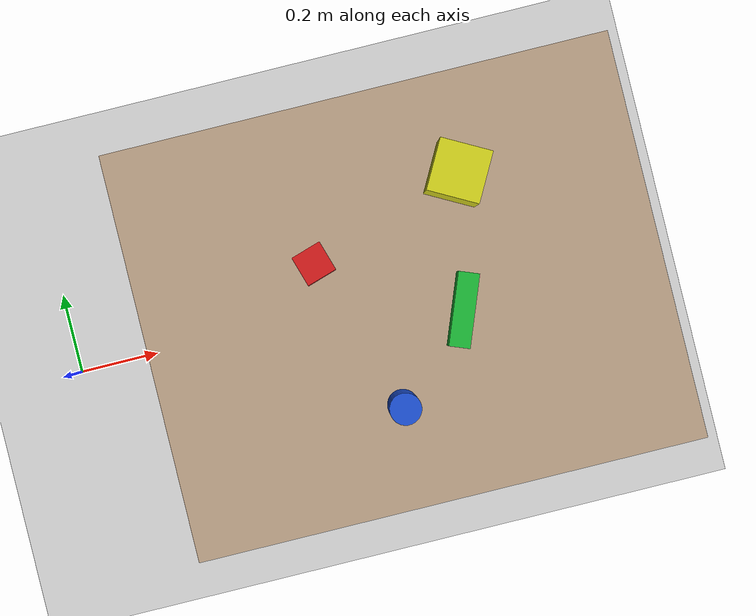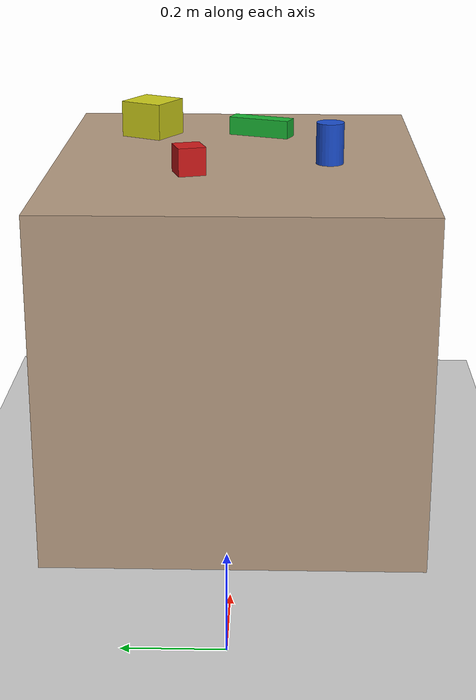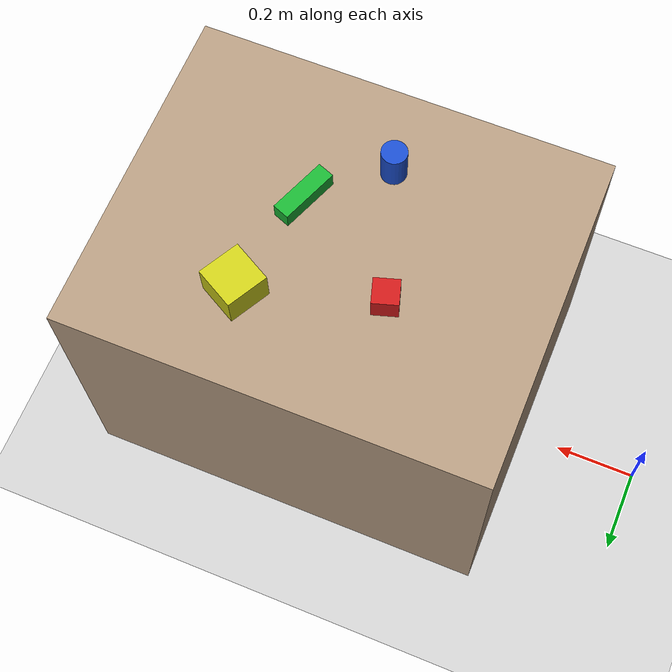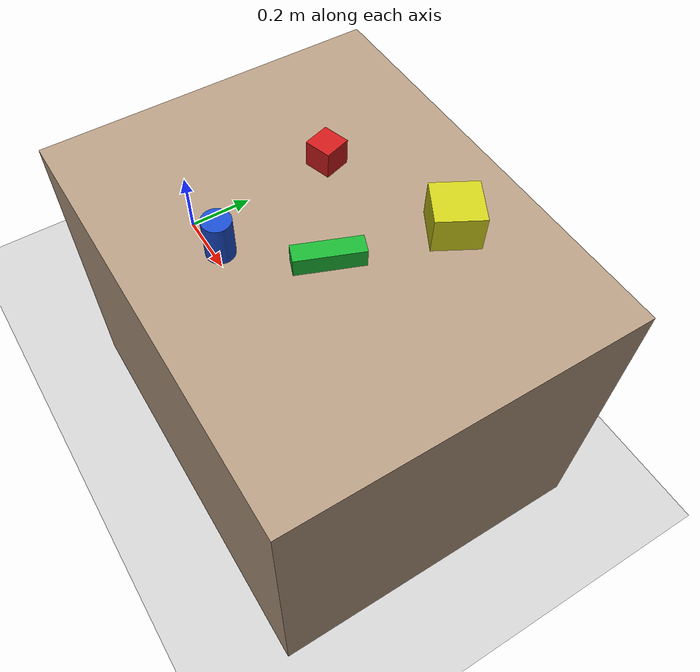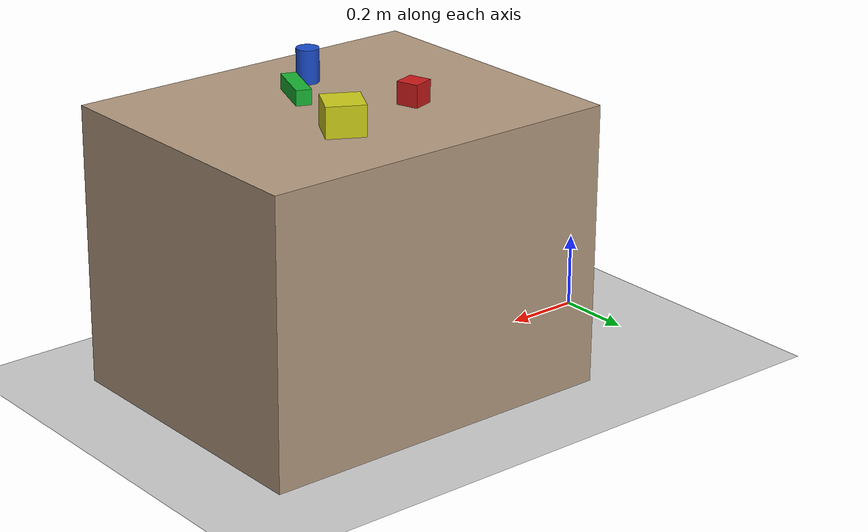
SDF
<?xml version="1.0" ?>
<sdf version="1.7">
  <world name="ur5_mesa_objetos">
    <!-- Gravedad y mundo base -->
    <gravity>0 0 -9.81</gravity>

    <!-- Suelo y luz -->
    <include>
      <uri>model://ground_plane</uri>
    </include>

    <include>
      <uri>model://sun</uri>
    </include>

    <!-- Mesa de trabajo delante del robot -->
    <!-- Tamaño: 1.0 x 0.8 x 0.75 m, apoyada en el suelo -->
    <model name="mesa_trabajo">
      <static>true</static>
      <!-- x y z roll pitch yaw -->
      <pose>0.8 0.0 0.375 0 0 0</pose>
      <link name="link">
        <collision name="collision">
          <geometry>
            <box>
              <size>1.0 0.8 0.75</size>
            </box>
          </geometry>
        </collision>
        <visual name="visual">
          <geometry>
            <box>
              <size>1.0 0.8 0.75</size>
            </box>
          </geometry>
          <material>
            <ambient>0.7 0.6 0.5 1</ambient>
            <diffuse>0.7 0.6 0.5 1</diffuse>
          </material>
        </visual>
      </link>
    </model>

    <!-- OBJETO 1: caja pequeña -->
    <model name="obj_caja_1">
      <!-- Encima de la mesa, posición aleatoria -->
      <pose>0.65 0.10 0.78 0 0 0.3</pose>
      <static>false</static>
      <link name="link">
        <collision name="collision">
          <geometry>
            <box>
              <size>0.06 0.06 0.06</size>
            </box>
          </geometry>
        </collision>
        <visual name="visual">
          <geometry>
            <box>
              <size>0.06 0.06 0.06</size>
            </box>
          </geometry>
          <material>
            <ambient>0.8 0.1 0.1 1</ambient>
            <diffuse>0.8 0.1 0.1 1</diffuse>
          </material>
        </visual>
      </link>
    </model>

    <!-- OBJETO 2: caja alargada -->
    <model name="obj_caja_2">
      <!-- Otra pose distinta, medio “tirada” -->
      <pose>0.90 -0.05 0.80 0 0 1.2</pose>
      <static>false</static>
      <link name="link">
        <collision name="collision">
          <geometry>
            <box>
              <size>0.14 0.04 0.04</size>
            </box>
          </geometry>
        </collision>
        <visual name="visual">
          <geometry>
            <box>
              <size>0.14 0.04 0.04</size>
            </box>
          </geometry>
          <material>
            <ambient>0.1 0.7 0.2 1</ambient>
            <diffuse>0.1 0.7 0.2 1</diffuse>
          </material>
        </visual>
      </link>
    </model>

    <!-- OBJETO 3: cilindro -->
    <model name="obj_cilindro_1">
      <pose>0.75 -0.20 0.79 0 0 0.7</pose>
      <static>false</static>
      <link name="link">
        <collision name="collision">
          <geometry>
            <cylinder>
              <radius>0.03</radius>
              <length>0.10</length>
            </cylinder>
          </geometry>
        </collision>
        <visual name="visual">
          <geometry>
            <cylinder>
              <radius>0.03</radius>
              <length>0.10</length>
            </cylinder>
          </geometry>
          <material>
            <ambient>0.1 0.3 0.8 1</ambient>
            <diffuse>0.1 0.3 0.8 1</diffuse>
          </material>
        </visual>
      </link>
    </model>

    <!-- OBJETO 4: caja más grande cerca del borde -->
    <model name="obj_caja_3">
      <pose>0.95 0.20 0.81 0 0 -0.5</pose>
      <static>false</static>
      <link name="link">
        <collision name="collision">
          <geometry>
            <box>
              <size>0.10 0.10 0.08</size>
            </box>
          </geometry>
        </collision>
        <visual name="visual">
          <geometry>
            <box>
              <size>0.10 0.10 0.08</size>
            </box>
          </geometry>
          <material>
            <ambient>0.8 0.8 0.1 1</ambient>
            <diffuse>0.8 0.8 0.1 1</diffuse>
          </material>
        </visual>
      </link>
    </model>

  </world>
</sdf>
